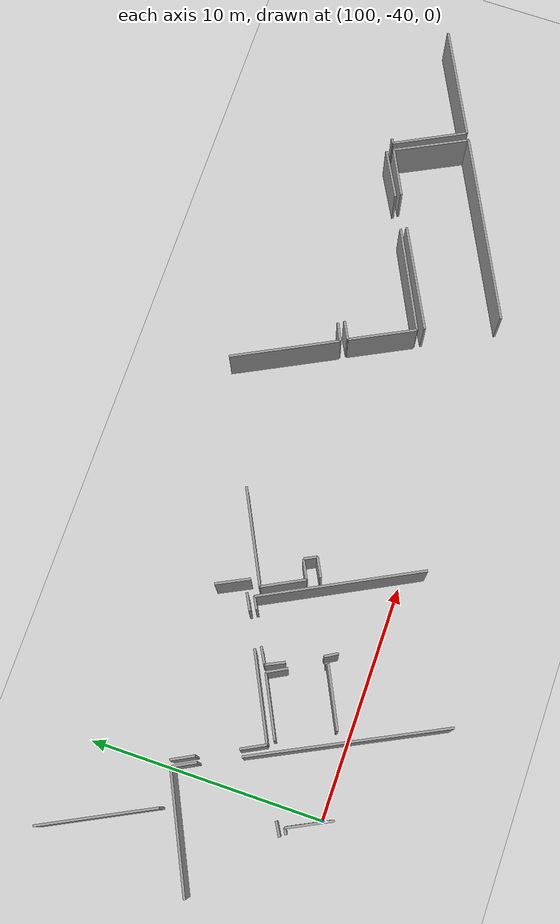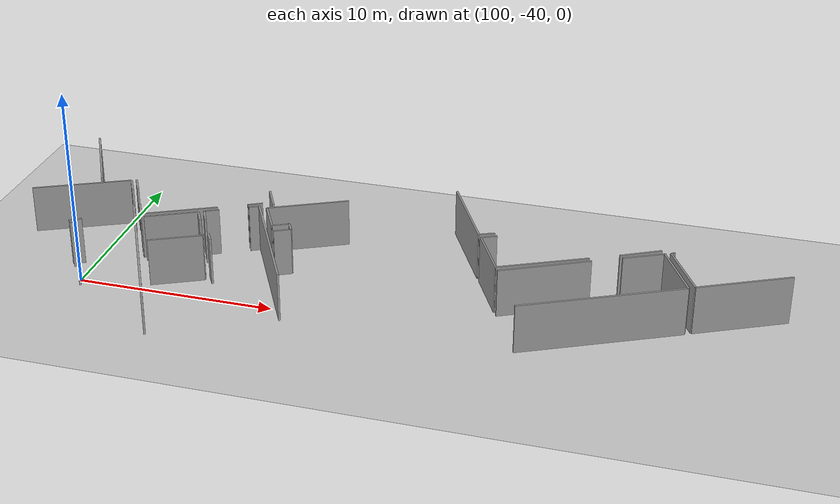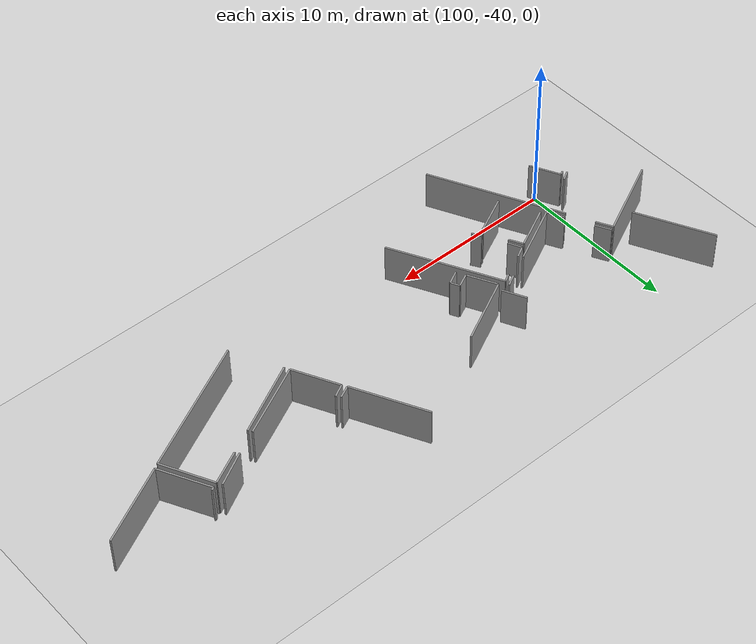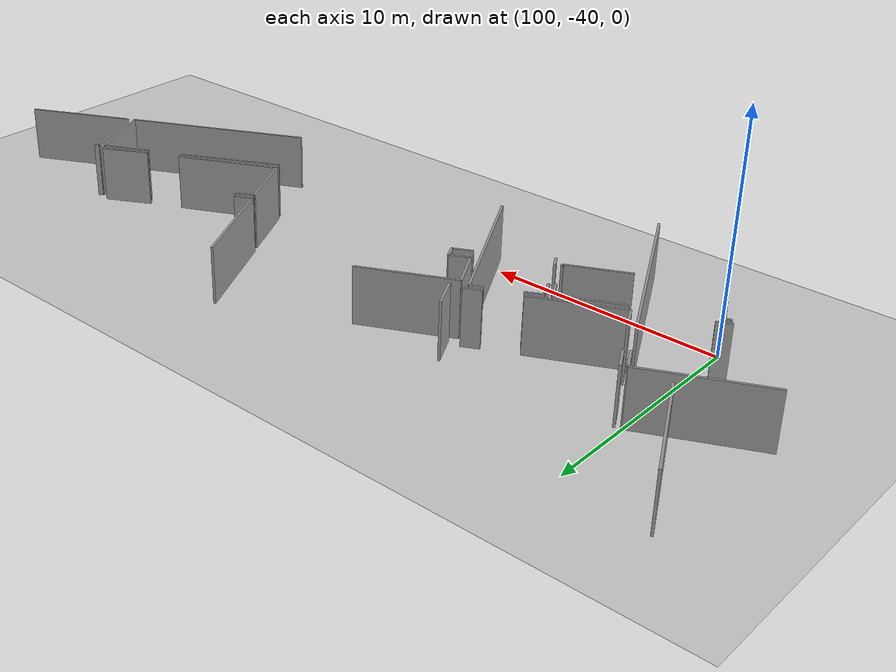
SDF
<sdf version="1.6">
 <world name="default">
  <model name="ground_plane">
   <static>1</static>
   <link name="link">
    <collision name="collision">
     <geometry><plane><normal>0 0 1</normal><size>100 100</size></plane></geometry>
     <surface><friction><ode><mu>100</mu><mu2>50</mu2></ode></friction></surface>
    </collision>
    <visual name="visual">
     <cast_shadows>0</cast_shadows>
     <geometry><plane><normal>0 0 1</normal><size>100 100</size></plane></geometry>
     <material>
      <script><uri>file://media/materials/scripts/gazebo.material</uri><name>Gazebo/Grey</name></script>
     </material>
    </visual>
   </link>
  </model>
  <model name="0510045925_40">
   <static>1</static>
   <link name="Wall_57">
    <collision name="Wall_57_Collision">
     <geometry><box><size>4.97087910752 0.1 2.5</size></box></geometry>
     <pose>2.48543955376 0 1.25 0 0 0</pose>
    </collision>
    <visual name="Wall_57_Visual">
     <pose>2.48543955376 0 1.25 0 0 0</pose>
     <geometry><box><size>4.97087910752 0.1 2.5</size></box></geometry>
     <material>
      <script><uri>file://media/materials/scripts/gazebo.material</uri><name>Gazebo/Grey</name></script>
      <ambient>1 1 1 1</ambient>
     </material>
    </visual>
    <pose>232.376640187 -134.850562168 0 0 0 2.03649896202</pose>
   </link>
   <link name="Wall_76">
    <collision name="Wall_76_Collision">
     <geometry><box><size>0.270581625165 0.1 2.5</size></box></geometry>
     <pose>0.135290812583 0 1.25 0 0 0</pose>
    </collision>
    <visual name="Wall_76_Visual">
     <pose>0.135290812583 0 1.25 0 0 0</pose>
     <geometry><box><size>0.270581625165 0.1 2.5</size></box></geometry>
     <material>
      <script><uri>file://media/materials/scripts/gazebo.material</uri><name>Gazebo/Grey</name></script>
      <ambient>1 1 1 1</ambient>
     </material>
    </visual>
    <pose>232.995660009 -139.869216517 0 0 0 0.491336711828</pose>
   </link>
   <link name="Wall_77">
    <collision name="Wall_77_Collision">
     <geometry><box><size>1.9690519194 0.1 2.5</size></box></geometry>
     <pose>0.984525959699 0 1.25 0 0 0</pose>
    </collision>
    <visual name="Wall_77_Visual">
     <pose>0.984525959699 0 1.25 0 0 0</pose>
     <geometry><box><size>1.9690519194 0.1 2.5</size></box></geometry>
     <material>
      <script><uri>file://media/materials/scripts/gazebo.material</uri><name>Gazebo/Grey</name></script>
      <ambient>1 1 1 1</ambient>
     </material>
    </visual>
    <pose>233.234232634 -139.741554783 0 0 0 -1.10709107426</pose>
   </link>
   <link name="Wall_82">
    <collision name="Wall_82_Collision">
     <geometry><box><size>0.640067212843 0.1 2.5</size></box></geometry>
     <pose>0.320033606422 0 1.25 0 0 0</pose>
    </collision>
    <visual name="Wall_82_Visual">
     <pose>0.320033606422 0 1.25 0 0 0</pose>
     <geometry><box><size>0.640067212843 0.1 2.5</size></box></geometry>
     <material>
      <script><uri>file://media/materials/scripts/gazebo.material</uri><name>Gazebo/Grey</name></script>
      <ambient>1 1 1 1</ambient>
     </material>
    </visual>
    <pose>233.381437019 -139.336488922 0 0 0 -2.60695343576</pose>
   </link>
   <link name="Wall_85">
    <collision name="Wall_85_Collision">
     <geometry><box><size>5.08640378387 0.1 2.5</size></box></geometry>
     <pose>2.54320189194 0 1.25 0 0 0</pose>
    </collision>
    <visual name="Wall_85_Visual">
     <pose>2.54320189194 0 1.25 0 0 0</pose>
     <geometry><box><size>5.08640378387 0.1 2.5</size></box></geometry>
     <material>
      <script><uri>file://media/materials/scripts/gazebo.material</uri><name>Gazebo/Grey</name></script>
      <ambient>1 1 1 1</ambient>
     </material>
    </visual>
    <pose>229.433060075 -136.951016472 0 0 0 0.454431382925</pose>
   </link>
   <link name="Wall_86">
    <collision name="Wall_86_Collision">
     <geometry><box><size>1.06643958972 0.1 2.5</size></box></geometry>
     <pose>0.533219794862 0 1.25 0 0 0</pose>
    </collision>
    <visual name="Wall_86_Visual">
     <pose>0.533219794862 0 1.25 0 0 0</pose>
     <geometry><box><size>1.06643958972 0.1 2.5</size></box></geometry>
     <material>
      <script><uri>file://media/materials/scripts/gazebo.material</uri><name>Gazebo/Grey</name></script>
      <ambient>1 1 1 1</ambient>
     </material>
    </visual>
    <pose>234.003248649 -134.718332022 0 0 0 -1.08820272016</pose>
   </link>
   <link name="Wall_87">
    <collision name="Wall_87_Collision">
     <geometry><box><size>8.48780612327 0.1 2.5</size></box></geometry>
     <pose>4.24390306163 0 1.25 0 0 0</pose>
    </collision>
    <visual name="Wall_87_Visual">
     <pose>4.24390306163 0 1.25 0 0 0</pose>
     <geometry><box><size>8.48780612327 0.1 2.5</size></box></geometry>
     <material>
      <script><uri>file://media/materials/scripts/gazebo.material</uri><name>Gazebo/Grey</name></script>
      <ambient>1 1 1 1</ambient>
     </material>
    </visual>
    <pose>235.269713967 -137.262429888 0 0 0 -1.11035812106</pose>
   </link>
   <link name="Wall_90">
    <collision name="Wall_90_Collision">
     <geometry><box><size>2.72204122689 0.1 2.5</size></box></geometry>
     <pose>1.36102061345 0 1.25 0 0 0</pose>
    </collision>
    <visual name="Wall_90_Visual">
     <pose>1.36102061345 0 1.25 0 0 0</pose>
     <geometry><box><size>2.72204122689 0.1 2.5</size></box></geometry>
     <material>
      <script><uri>file://media/materials/scripts/gazebo.material</uri><name>Gazebo/Grey</name></script>
      <ambient>1 1 1 1</ambient>
     </material>
    </visual>
    <pose>236.272226593 -138.283469963 0 0 0 0.466316270833</pose>
   </link>
   <link name="Wall_91">
    <collision name="Wall_91_Collision">
     <geometry><box><size>0.907265493769 0.1 2.5</size></box></geometry>
     <pose>0.453632746884 0 1.25 0 0 0</pose>
    </collision>
    <visual name="Wall_91_Visual">
     <pose>0.453632746884 0 1.25 0 0 0</pose>
     <geometry><box><size>0.907265493769 0.1 2.5</size></box></geometry>
     <material>
      <script><uri>file://media/materials/scripts/gazebo.material</uri><name>Gazebo/Grey</name></script>
      <ambient>1 1 1 1</ambient>
     </material>
    </visual>
    <pose>238.703636964 -137.059643156 0 0 0 -1.07837068237</pose>
   </link>
   <link name="Wall_92">
    <collision name="Wall_92_Collision">
     <geometry><box><size>0.118310317208 0.1 2.5</size></box></geometry>
     <pose>0.0591551586041 0 1.25 0 0 0</pose>
    </collision>
    <visual name="Wall_92_Visual">
     <pose>0.0591551586041 0 1.25 0 0 0</pose>
     <geometry><box><size>0.118310317208 0.1 2.5</size></box></geometry>
     <material>
      <script><uri>file://media/materials/scripts/gazebo.material</uri><name>Gazebo/Grey</name></script>
      <ambient>1 1 1 1</ambient>
     </material>
    </visual>
    <pose>239.797517829 -139.201213167 0 0 0 -1.17435504358</pose>
   </link>
   <link name="Wall_93">
    <collision name="Wall_93_Collision">
     <geometry><box><size>2.69888152072 0.1 2.5</size></box></geometry>
     <pose>1.34944076036 0 1.25 0 0 0</pose>
    </collision>
    <visual name="Wall_93_Visual">
     <pose>1.34944076036 0 1.25 0 0 0</pose>
     <geometry><box><size>2.69888152072 0.1 2.5</size></box></geometry>
     <material>
      <script><uri>file://media/materials/scripts/gazebo.material</uri><name>Gazebo/Grey</name></script>
      <ambient>1 1 1 1</ambient>
     </material>
    </visual>
    <pose>239.843201949 -139.310347453 0 0 0 -2.67979549247</pose>
   </link>
   <link name="Wall_96">
    <collision name="Wall_96_Collision">
     <geometry><box><size>0.61439291027 0.1 2.5</size></box></geometry>
     <pose>0.307196455135 0 1.25 0 0 0</pose>
    </collision>
    <visual name="Wall_96_Visual">
     <pose>0.307196455135 0 1.25 0 0 0</pose>
     <geometry><box><size>0.61439291027 0.1 2.5</size></box></geometry>
     <material>
      <script><uri>file://media/materials/scripts/gazebo.material</uri><name>Gazebo/Grey</name></script>
      <ambient>1 1 1 1</ambient>
     </material>
    </visual>
    <pose>240.350803279 -139.588512982 0 0 0 2.10377706948</pose>
   </link>
   <link name="Wall_97">
    <collision name="Wall_97_Collision">
     <geometry><box><size>0.85958414805 0.1 2.5</size></box></geometry>
     <pose>0.429792074025 0 1.25 0 0 0</pose>
    </collision>
    <visual name="Wall_97_Visual">
     <pose>0.429792074025 0 1.25 0 0 0</pose>
     <geometry><box><size>0.85958414805 0.1 2.5</size></box></geometry>
     <material>
      <script><uri>file://media/materials/scripts/gazebo.material</uri><name>Gazebo/Grey</name></script>
      <ambient>1 1 1 1</ambient>
     </material>
    </visual>
    <pose>239.335600619 -137.691353011 0 0 0 2.01648495817</pose>
   </link>
   <link name="Wall_98">
    <collision name="Wall_98_Collision">
     <geometry><box><size>0.748660339371 0.1 2.5</size></box></geometry>
     <pose>0.374330169686 0 1.25 0 0 0</pose>
    </collision>
    <visual name="Wall_98_Visual">
     <pose>0.374330169686 0 1.25 0 0 0</pose>
     <geometry><box><size>0.748660339371 0.1 2.5</size></box></geometry>
     <material>
      <script><uri>file://media/materials/scripts/gazebo.material</uri><name>Gazebo/Grey</name></script>
      <ambient>1 1 1 1</ambient>
     </material>
    </visual>
    <pose>238.965051648 -136.915738179 0 0 0 0.506110687789</pose>
   </link>
   <link name="Wall_99">
    <collision name="Wall_99_Collision">
     <geometry><box><size>0.535306517013 0.1 2.5</size></box></geometry>
     <pose>0.267653258507 0 1.25 0 0 0</pose>
    </collision>
    <visual name="Wall_99_Visual">
     <pose>0.267653258507 0 1.25 0 0 0</pose>
     <geometry><box><size>0.535306517013 0.1 2.5</size></box></geometry>
     <material>
      <script><uri>file://media/materials/scripts/gazebo.material</uri><name>Gazebo/Grey</name></script>
      <ambient>1 1 1 1</ambient>
     </material>
    </visual>
    <pose>240.967538895 -135.883530875 0 0 0 0.510736526565</pose>
   </link>
   <link name="Wall_100">
    <collision name="Wall_100_Collision">
     <geometry><box><size>7.12234402918 0.1 2.5</size></box></geometry>
     <pose>3.56117201459 0 1.25 0 0 0</pose>
    </collision>
    <visual name="Wall_100_Visual">
     <pose>3.56117201459 0 1.25 0 0 0</pose>
     <geometry><box><size>7.12234402918 0.1 2.5</size></box></geometry>
     <material>
      <script><uri>file://media/materials/scripts/gazebo.material</uri><name>Gazebo/Grey</name></script>
      <ambient>1 1 1 1</ambient>
     </material>
    </visual>
    <pose>241.434532118 -135.621862389 0 0 0 -1.09556284028</pose>
   </link>
   <link name="Wall_102">
    <collision name="Wall_102_Collision">
     <geometry><box><size>1.09773482073 0.1 2.5</size></box></geometry>
     <pose>0.548867410363 0 1.25 0 0 0</pose>
    </collision>
    <visual name="Wall_102_Visual">
     <pose>0.548867410363 0 1.25 0 0 0</pose>
     <geometry><box><size>1.09773482073 0.1 2.5</size></box></geometry>
     <material>
      <script><uri>file://media/materials/scripts/gazebo.material</uri><name>Gazebo/Grey</name></script>
      <ambient>1 1 1 1</ambient>
     </material>
    </visual>
    <pose>236.023501942 -138.04185173 0 0 0 2.05150536182</pose>
   </link>
   <link name="Wall_103">
    <collision name="Wall_103_Collision">
     <geometry><box><size>1.021496316 0.1 2.5</size></box></geometry>
     <pose>0.510748157999 0 1.25 0 0 0</pose>
    </collision>
    <visual name="Wall_103_Visual">
     <pose>0.510748157999 0 1.25 0 0 0</pose>
     <geometry><box><size>1.021496316 0.1 2.5</size></box></geometry>
     <material>
      <script><uri>file://media/materials/scripts/gazebo.material</uri><name>Gazebo/Grey</name></script>
      <ambient>1 1 1 1</ambient>
     </material>
    </visual>
    <pose>234.71389051 -135.504860283 0 0 0 2.0540013441</pose>
   </link>
   <link name="Wall_108">
    <collision name="Wall_108_Collision">
     <geometry><box><size>0.76092982153 0.1 2.5</size></box></geometry>
     <pose>0.380464910765 0 1.25 0 0 0</pose>
    </collision>
    <visual name="Wall_108_Visual">
     <pose>0.380464910765 0 1.25 0 0 0</pose>
     <geometry><box><size>0.76092982153 0.1 2.5</size></box></geometry>
     <material>
      <script><uri>file://media/materials/scripts/gazebo.material</uri><name>Gazebo/Grey</name></script>
      <ambient>1 1 1 1</ambient>
     </material>
    </visual>
    <pose>241.485292251 -135.285322708 0 0 0 -2.64780941601</pose>
   </link>
   <link name="Wall_109">
    <collision name="Wall_109_Collision">
     <geometry><box><size>3.82857357539 0.1 2.5</size></box></geometry>
     <pose>1.9142867877 0 1.25 0 0 0</pose>
    </collision>
    <visual name="Wall_109_Visual">
     <pose>1.9142867877 0 1.25 0 0 0</pose>
     <geometry><box><size>3.82857357539 0.1 2.5</size></box></geometry>
     <material>
      <script><uri>file://media/materials/scripts/gazebo.material</uri><name>Gazebo/Grey</name></script>
      <ambient>1 1 1 1</ambient>
     </material>
    </visual>
    <pose>239.447272912 -136.328443441 0 0 0 -2.67758928877</pose>
   </link>
   <link name="Wall_111">
    <collision name="Wall_111_Collision">
     <geometry><box><size>0.86588529786 0.1 2.5</size></box></geometry>
     <pose>0.43294264893 0 1.25 0 0 0</pose>
    </collision>
    <visual name="Wall_111_Visual">
     <pose>0.43294264893 0 1.25 0 0 0</pose>
     <geometry><box><size>0.86588529786 0.1 2.5</size></box></geometry>
     <material>
      <script><uri>file://media/materials/scripts/gazebo.material</uri><name>Gazebo/Grey</name></script>
      <ambient>1 1 1 1</ambient>
     </material>
    </visual>
    <pose>243.020786274 -137.924342022 0 0 0 0.477542886635</pose>
   </link>
   <link name="Wall_112">
    <collision name="Wall_112_Collision">
     <geometry><box><size>0.573424171641 0.1 2.5</size></box></geometry>
     <pose>0.286712085821 0 1.25 0 0 0</pose>
    </collision>
    <visual name="Wall_112_Visual">
     <pose>0.286712085821 0 1.25 0 0 0</pose>
     <geometry><box><size>0.573424171641 0.1 2.5</size></box></geometry>
     <material>
      <script><uri>file://media/materials/scripts/gazebo.material</uri><name>Gazebo/Grey</name></script>
      <ambient>1 1 1 1</ambient>
     </material>
    </visual>
    <pose>243.789802289 -137.526382579 0 0 0 2.03919449388</pose>
   </link>
   <link name="Wall_113">
    <collision name="Wall_113_Collision">
     <geometry><box><size>0.863990697386 0.1 2.5</size></box></geometry>
     <pose>0.431995348693 0 1.25 0 0 0</pose>
    </collision>
    <visual name="Wall_113_Visual">
     <pose>0.431995348693 0 1.25 0 0 0</pose>
     <geometry><box><size>0.863990697386 0.1 2.5</size></box></geometry>
     <material>
      <script><uri>file://media/materials/scripts/gazebo.material</uri><name>Gazebo/Grey</name></script>
      <ambient>1 1 1 1</ambient>
     </material>
    </visual>
    <pose>243.530925611 -137.014720439 0 0 0 -2.68136069079</pose>
   </link>
   <link name="Wall_114">
    <collision name="Wall_114_Collision">
     <geometry><box><size>1.90526122209 0.1 2.5</size></box></geometry>
     <pose>0.952630611044 0 1.25 0 0 0</pose>
    </collision>
    <visual name="Wall_114_Visual">
     <pose>0.952630611044 0 1.25 0 0 0</pose>
     <geometry><box><size>1.90526122209 0.1 2.5</size></box></geometry>
     <material>
      <script><uri>file://media/materials/scripts/gazebo.material</uri><name>Gazebo/Grey</name></script>
      <ambient>1 1 1 1</ambient>
     </material>
    </visual>
    <pose>242.756833583 -137.398467044 0 0 0 2.04981450788</pose>
   </link>
   <link name="Wall_115">
    <collision name="Wall_115_Collision">
     <geometry><box><size>4.18477539962 0.1 2.5</size></box></geometry>
     <pose>2.09238769981 0 1.25 0 0 0</pose>
    </collision>
    <visual name="Wall_115_Visual">
     <pose>2.09238769981 0 1.25 0 0 0</pose>
     <geometry><box><size>4.18477539962 0.1 2.5</size></box></geometry>
     <material>
      <script><uri>file://media/materials/scripts/gazebo.material</uri><name>Gazebo/Grey</name></script>
      <ambient>1 1 1 1</ambient>
     </material>
    </visual>
    <pose>241.878683282 -135.707647014 0 0 0 0.46739057343</pose>
   </link>
   <link name="Wall_120">
    <collision name="Wall_120_Collision">
     <geometry><box><size>4.62823981104 0.1 2.5</size></box></geometry>
     <pose>2.31411990552 0 1.25 0 0 0</pose>
    </collision>
    <visual name="Wall_120_Visual">
     <pose>2.31411990552 0 1.25 0 0 0</pose>
     <geometry><box><size>4.62823981104 0.1 2.5</size></box></geometry>
     <material>
      <script><uri>file://media/materials/scripts/gazebo.material</uri><name>Gazebo/Grey</name></script>
      <ambient>1 1 1 1</ambient>
     </material>
    </visual>
    <pose>254.467196264 -138.700972057 0 0 0 0.478215400126</pose>
   </link>
   <link name="Wall_121">
    <collision name="Wall_121_Collision">
     <geometry><box><size>2.11153259358 0.1 2.5</size></box></geometry>
     <pose>1.05576629679 0 1.25 0 0 0</pose>
    </collision>
    <visual name="Wall_121_Visual">
     <pose>1.05576629679 0 1.25 0 0 0</pose>
     <geometry><box><size>2.11153259358 0.1 2.5</size></box></geometry>
     <material>
      <script><uri>file://media/materials/scripts/gazebo.material</uri><name>Gazebo/Grey</name></script>
      <ambient>1 1 1 1</ambient>
     </material>
    </visual>
    <pose>259.949290627 -135.884546078 0 0 0 0.469345553034</pose>
   </link>
   <link name="Wall_122">
    <collision name="Wall_122_Collision">
     <geometry><box><size>3.29796468101 0.1 2.5</size></box></geometry>
     <pose>1.64898234051 0 1.25 0 0 0</pose>
    </collision>
    <visual name="Wall_122_Visual">
     <pose>1.64898234051 0 1.25 0 0 0</pose>
     <geometry><box><size>3.29796468101 0.1 2.5</size></box></geometry>
     <material>
      <script><uri>file://media/materials/scripts/gazebo.material</uri><name>Gazebo/Grey</name></script>
      <ambient>1 1 1 1</ambient>
     </material>
    </visual>
    <pose>261.832491561 -134.929494175 0 0 0 -1.10381034914</pose>
   </link>
   <link name="Wall_123">
    <collision name="Wall_123_Collision">
     <geometry><box><size>8.27235218457 0.1 2.5</size></box></geometry>
     <pose>4.13617609229 0 1.25 0 0 0</pose>
    </collision>
    <visual name="Wall_123_Visual">
     <pose>4.13617609229 0 1.25 0 0 0</pose>
     <geometry><box><size>8.27235218457 0.1 2.5</size></box></geometry>
     <material>
      <script><uri>file://media/materials/scripts/gazebo.material</uri><name>Gazebo/Grey</name></script>
      <ambient>1 1 1 1</ambient>
     </material>
    </visual>
    <pose>263.317225451 -137.874343291 0 0 0 -2.67229205394</pose>
   </link>
   <link name="Wall_124">
    <collision name="Wall_124_Collision">
     <geometry><box><size>2.95792235139 0.1 2.5</size></box></geometry>
     <pose>1.47896117569 0 1.25 0 0 0</pose>
    </collision>
    <visual name="Wall_124_Visual">
     <pose>1.47896117569 0 1.25 0 0 0</pose>
     <geometry><box><size>2.95792235139 0.1 2.5</size></box></geometry>
     <material>
      <script><uri>file://media/materials/scripts/gazebo.material</uri><name>Gazebo/Grey</name></script>
      <ambient>1 1 1 1</ambient>
     </material>
    </visual>
    <pose>254.322529885 -138.405040481 0 0 0 2.0390486615</pose>
   </link>
   <link name="Wall_125">
    <collision name="Wall_125_Collision">
     <geometry><box><size>0.813625556482 0.1 2.5</size></box></geometry>
     <pose>0.406812778241 0 1.25 0 0 0</pose>
    </collision>
    <visual name="Wall_125_Visual">
     <pose>0.406812778241 0 1.25 0 0 0</pose>
     <geometry><box><size>0.813625556482 0.1 2.5</size></box></geometry>
     <material>
      <script><uri>file://media/materials/scripts/gazebo.material</uri><name>Gazebo/Grey</name></script>
      <ambient>1 1 1 1</ambient>
     </material>
    </visual>
    <pose>252.987538387 -135.765513566 0 0 0 0.48903986165</pose>
   </link>
   <link name="Wall_128">
    <collision name="Wall_128_Collision">
     <geometry><box><size>2.14376237857 0.1 2.5</size></box></geometry>
     <pose>1.07188118929 0 1.25 0 0 0</pose>
    </collision>
    <visual name="Wall_128_Visual">
     <pose>1.07188118929 0 1.25 0 0 0</pose>
     <geometry><box><size>2.14376237857 0.1 2.5</size></box></geometry>
     <material>
      <script><uri>file://media/materials/scripts/gazebo.material</uri><name>Gazebo/Grey</name></script>
      <ambient>1 1 1 1</ambient>
     </material>
    </visual>
    <pose>261.664983122 -134.657673663 0 0 0 -2.6434175554</pose>
   </link>
   <link name="Wall_129">
    <collision name="Wall_129_Collision">
     <geometry><box><size>4.59074679257 0.1 2.5</size></box></geometry>
     <pose>2.29537339629 0 1.25 0 0 0</pose>
    </collision>
    <visual name="Wall_129_Visual">
     <pose>2.29537339629 0 1.25 0 0 0</pose>
     <geometry><box><size>4.59074679257 0.1 2.5</size></box></geometry>
     <material>
      <script><uri>file://media/materials/scripts/gazebo.material</uri><name>Gazebo/Grey</name></script>
      <ambient>1 1 1 1</ambient>
     </material>
    </visual>
    <pose>258.429024644 -136.352808304 0 0 0 -2.67814283918</pose>
   </link>
   <link name="Wall_130">
    <collision name="Wall_130_Collision">
     <geometry><box><size>3.26661506818 0.1 2.5</size></box></geometry>
     <pose>1.63330753409 0 1.25 0 0 0</pose>
    </collision>
    <visual name="Wall_130_Visual">
     <pose>1.63330753409 0 1.25 0 0 0</pose>
     <geometry><box><size>3.26661506818 0.1 2.5</size></box></geometry>
     <material>
      <script><uri>file://media/materials/scripts/gazebo.material</uri><name>Gazebo/Grey</name></script>
      <ambient>1 1 1 1</ambient>
     </material>
    </visual>
    <pose>263.614172229 -137.707596254 0 0 0 2.04611899082</pose>
   </link>
   <link name="Wall_131">
    <collision name="Wall_131_Collision">
     <geometry><box><size>0.206925224612 0.1 2.5</size></box></geometry>
     <pose>0.103462612306 0 1.25 0 0 0</pose>
    </collision>
    <visual name="Wall_131_Visual">
     <pose>0.103462612306 0 1.25 0 0 0</pose>
     <geometry><box><size>0.206925224612 0.1 2.5</size></box></geometry>
     <material>
      <script><uri>file://media/materials/scripts/gazebo.material</uri><name>Gazebo/Grey</name></script>
      <ambient>1 1 1 1</ambient>
     </material>
    </visual>
    <pose>262.119286313 -134.803101444 0 0 0 0.538316011577</pose>
   </link>
   <link name="Wall_136">
    <collision name="Wall_136_Collision">
     <geometry><box><size>4.85264257059 0.1 2.5</size></box></geometry>
     <pose>2.4263212853 0 1.25 0 0 0</pose>
    </collision>
    <visual name="Wall_136_Visual">
     <pose>2.4263212853 0 1.25 0 0 0</pose>
     <geometry><box><size>4.85264257059 0.1 2.5</size></box></geometry>
     <material>
      <script><uri>file://media/materials/scripts/gazebo.material</uri><name>Gazebo/Grey</name></script>
      <ambient>1 1 1 1</ambient>
     </material>
    </visual>
    <pose>267.93132154 -135.491662648 0 0 0 -2.66737258643</pose>
   </link>
   <link name="Wall_144">
    <collision name="Wall_144_Collision">
     <geometry><box><size>4.73478543903 0.1 2.5</size></box></geometry>
     <pose>2.36739271951 0 1.25 0 0 0</pose>
    </collision>
    <visual name="Wall_144_Visual">
     <pose>2.36739271951 0 1.25 0 0 0</pose>
     <geometry><box><size>4.73478543903 0.1 2.5</size></box></geometry>
     <material>
      <script><uri>file://media/materials/scripts/gazebo.material</uri><name>Gazebo/Grey</name></script>
      <ambient>1 1 1 1</ambient>
     </material>
    </visual>
    <pose>252.820029948 -135.487348037 0 0 0 2.041467841</pose>
   </link>
   <link name="Wall_151">
    <collision name="Wall_151_Collision">
     <geometry><box><size>0.803759097512 0.1 2.5</size></box></geometry>
     <pose>0.401879548756 0 1.25 0 0 0</pose>
    </collision>
    <visual name="Wall_151_Visual">
     <pose>0.401879548756 0 1.25 0 0 0</pose>
     <geometry><box><size>0.803759097512 0.1 2.5</size></box></geometry>
     <material>
      <script><uri>file://media/materials/scripts/gazebo.material</uri><name>Gazebo/Grey</name></script>
      <ambient>1 1 1 1</ambient>
     </material>
    </visual>
    <pose>253.54589985 -135.142179133 0 0 0 -2.6977164792</pose>
   </link>
   <link name="Wall_175">
    <collision name="Wall_175_Collision">
     <geometry><box><size>1.48871147541 0.1 2.5</size></box></geometry>
     <pose>0.744355737704 0 1.25 0 0 0</pose>
    </collision>
    <visual name="Wall_175_Visual">
     <pose>0.744355737704 0 1.25 0 0 0</pose>
     <geometry><box><size>1.48871147541 0.1 2.5</size></box></geometry>
     <material>
      <script><uri>file://media/materials/scripts/gazebo.material</uri><name>Gazebo/Grey</name></script>
      <ambient>1 1 1 1</ambient>
     </material>
    </visual>
    <pose>242.061419761 -135.258419837 0 0 0 2.03192793013</pose>
   </link>
   <pose>-133.95 101.083118449 0 0 0 0</pose>
  </model>
 </world>
</sdf>
